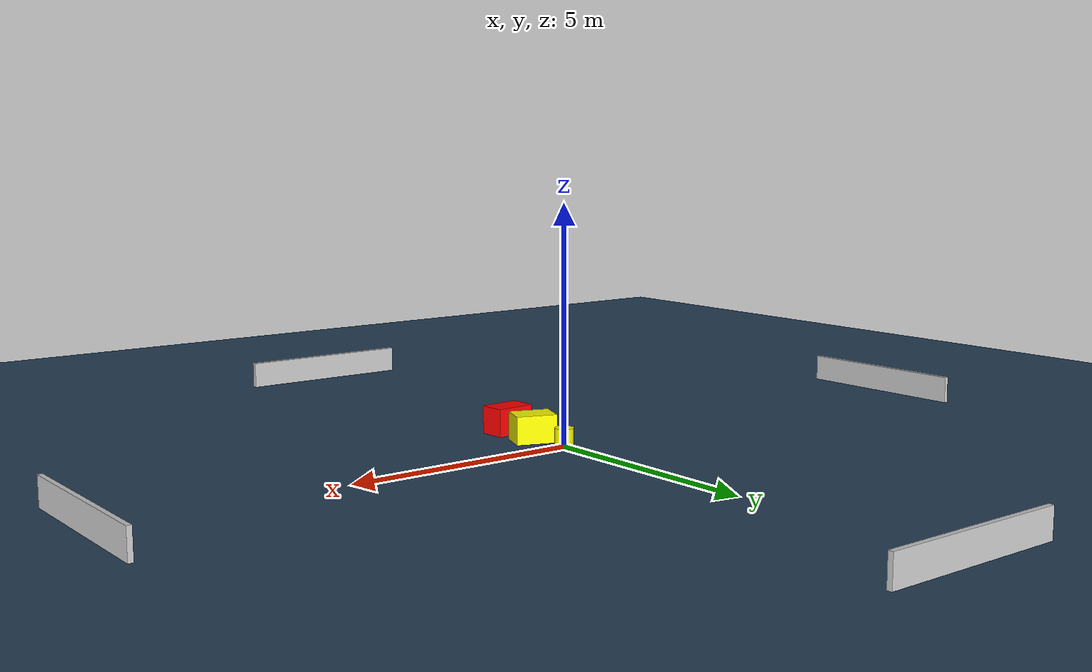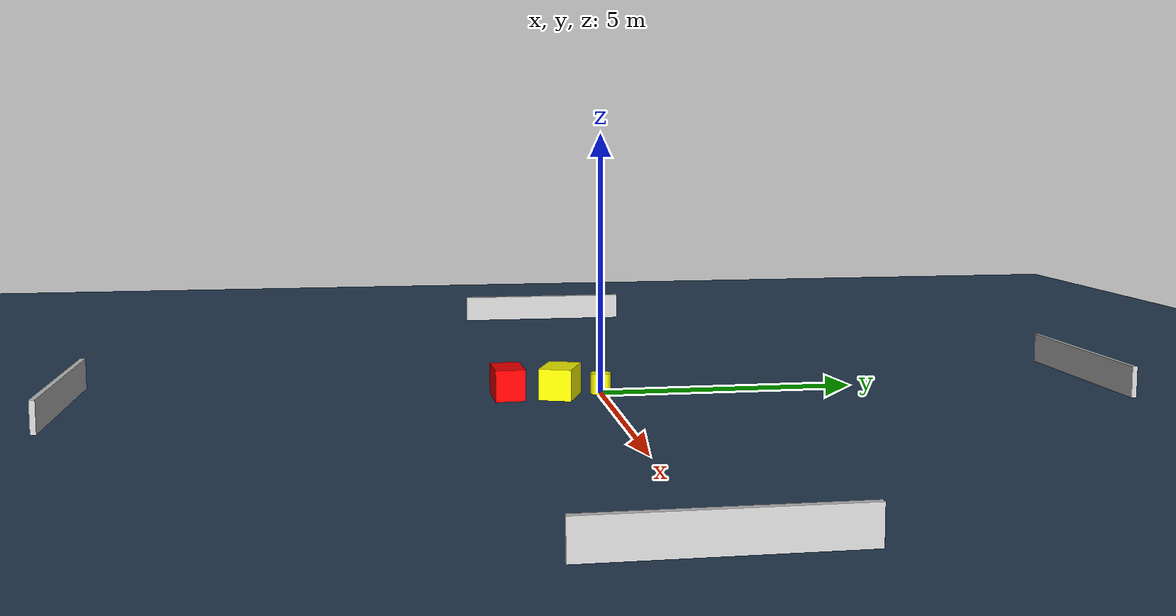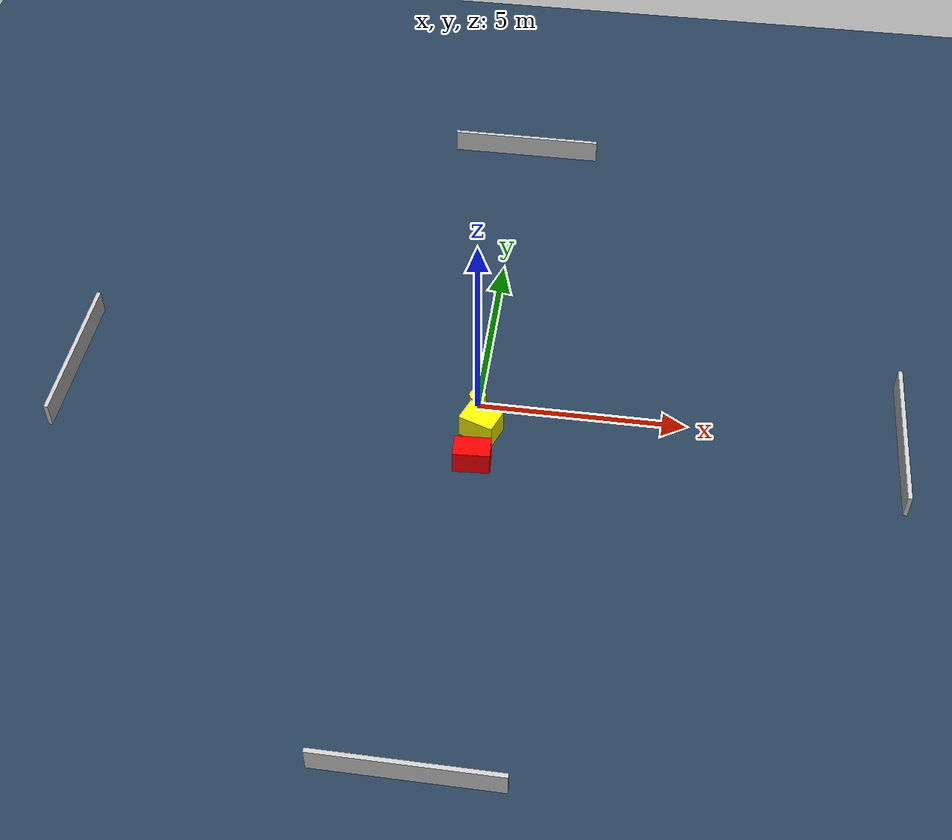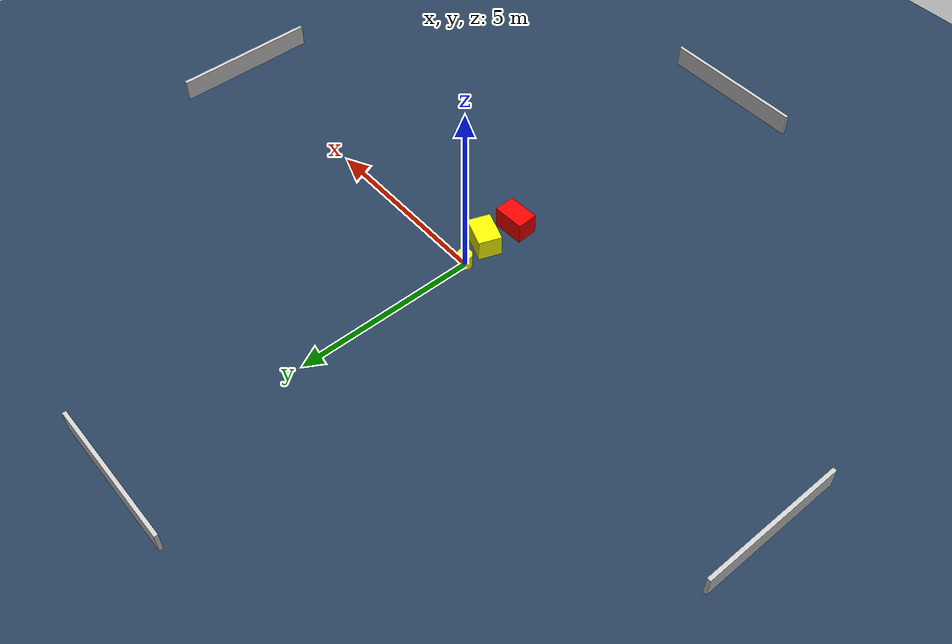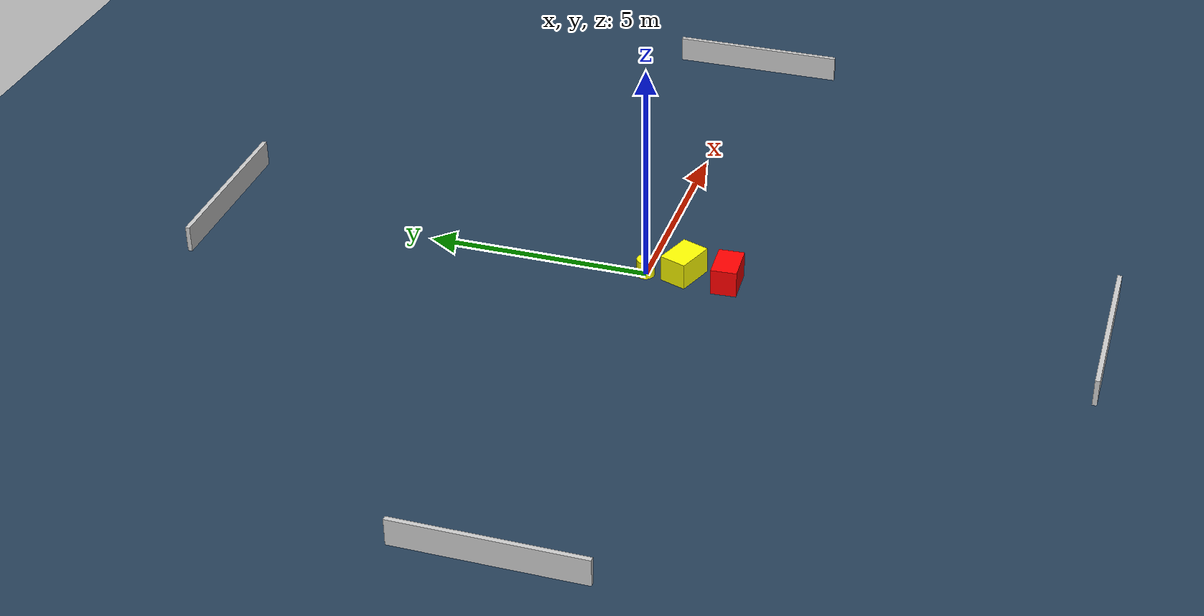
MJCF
<?xml version="1.0" ?>
<mujoco model="generated_environment">
  <option timestep="0.01" integrator="RK4" cone="elliptic"/>
  <default>
    <geom density="1"/>
  </default>
  <asset>
    <texture builtin="gradient" height="3072" name="skybox" rgb1="0.3 0.5 0.7" rgb2="0 0 0" type="skybox" width="512"/>
    <texture builtin="checker" height="300" name="groundplane" rgb1="0.2 0.3 0.4" rgb2="0.1 0.2 0.3" type="2d" width="300"/>
    <material name="groundplane" reflectance="0.2" texrepeat="5 5" texture="groundplane"/>
  </asset>
  <worldbody>
    <light dir="0 0 -1" directional="true" pos="0 0 1.5"/>
    <geom condim="3" friction="0.5 0.005 0.001" material="groundplane" name="floor" pos="0 0 0" size="0 0 0.05" type="plane"/>
    <body name="walls">
      <geom name="wall_1" condim="4" pos="-10.0 0.0 0.3" rgba="0.800000011920929 0.800000011920929 0.800000011920929 1.0" size="0.05 2.0 0.3" type="box"/>
      <geom name="wall_2" condim="4" pos="10.0 0.0 0.3" rgba="0.800000011920929 0.800000011920929 0.800000011920929 1.0" size="0.05 2.0 0.3" type="box"/>
      <geom name="wall_3" condim="4" pos="0.0 -10.0 0.3" rgba="0.800000011920929 0.800000011920929 0.800000011920929 1.0" size="2.0 0.05 0.3" type="box"/>
      <geom name="wall_4" condim="4" pos="0.0 10.0 0.3" rgba="0.800000011920929 0.800000011920929 0.800000011920929 1.0" size="2.0 0.05 0.3" type="box"/>
    </body>
    <body name="robot">
      <joint name="joint_x" type="slide" pos="0 0 0" axis="1 0 0"/>
      <joint name="joint_y" type="slide" pos="0 0 0" axis="0 1 0"/>
      <geom name="robot" type="cylinder" pos="0.0 0.0 0.2" size="0.2 0.2 0.0" mass="5.0" friction="1.0 0.005 0.0001" condim="4" rgba="1.0 1.0 0.0 1.0"/>
    </body>
    <body name="obstacle_1_movable">
      <geom name="obstacle_1_movable" condim="4" pos="0.19414353110167415 -0.8168197151309916 0.3" euler="0 0 249.74532455287175" friction="0.0 0.005 0.001" rgba="1.0 1.0 0.0 1.0" size="0.3133085449562453 0.43493373695418214 0.3" type="box" mass="0.1"/>
      <joint type="free"/>
    </body>
    <body name="obstacle_2_static">
      <geom name="obstacle_2_static" condim="4" pos="0.11944331025819672 -1.8162528425391473 0.3" euler="0 0 92.91247520330704" friction="0.0 0.005 0.001" rgba="1.0 0.0 0.0 1.0" size="0.2864287266697853 0.43384278018924083 0.3" type="box"/>
    </body>
  </worldbody>
  <actuator>
    <motor name="actuator_x" joint="joint_x" gear="1" ctrlrange="-1 1"/>
    <motor name="actuator_y" joint="joint_y" gear="1" ctrlrange="-1 1"/>
  </actuator>
</mujoco>
